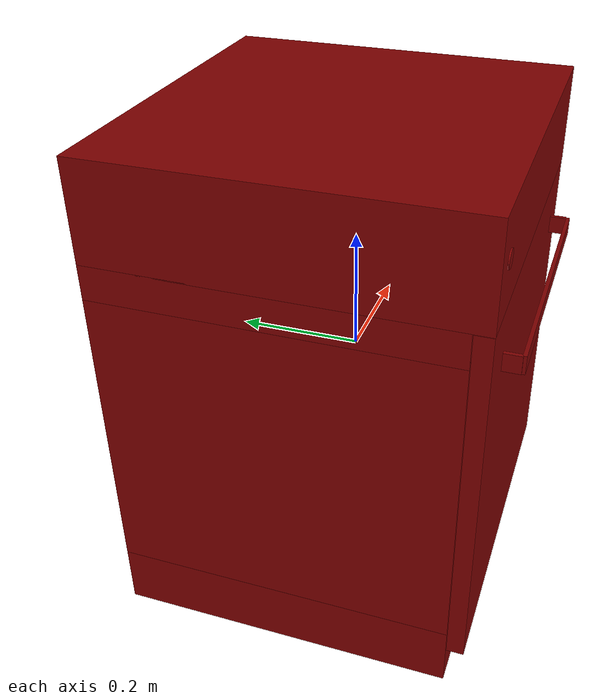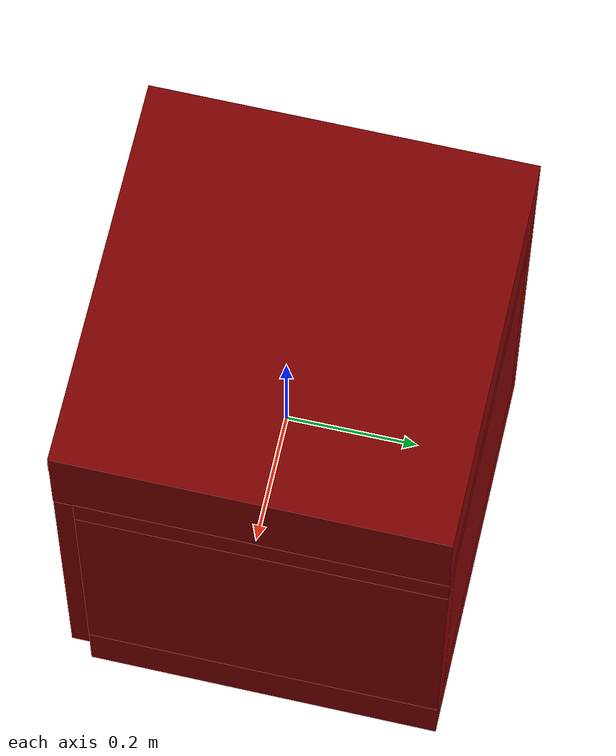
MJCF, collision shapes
<mujoco model="model">
  <compiler angle="radian"/>
  <asset>
    <mesh file="visuals/Body001.obj" name="Body001_vis"/>
    <mesh file="visuals/Button001.obj" name="Button001_vis"/>
    <mesh file="visuals/Container001.obj" name="Container001_vis"/>
    <mesh file="visuals/Container002.obj" name="Container002_vis"/>
    <mesh file="visuals/Door001.obj" name="Door001_vis"/>
    <mesh file="visuals/Handle001.obj" name="Handle001_vis"/>
    <texture file="visuals/T_BC001.png" name="Body001_material" type="2d"/>
    <material name="Body001_material" rgba="1 1 1 1.0" texture="Body001_material" shininess="0.2512328028678894" specular="0.3103448502657381"/>
    <texture file="visuals/T_BC001.png" name="Button001_material" type="2d"/>
    <material name="Button001_material" rgba="1 1 1 1.0" texture="Button001_material" shininess="0.2512328028678894" specular="0.3103448502657381"/>
    <texture file="visuals/T_BC001.png" name="Container001_material" type="2d"/>
    <material name="Container001_material" rgba="1 1 1 1.0" texture="Container001_material" shininess="0.2512328028678894" specular="0.3103448502657381"/>
    <texture file="visuals/T_BC001.png" name="Container002_material" type="2d"/>
    <material name="Container002_material" rgba="1 1 1 1.0" texture="Container002_material" shininess="0.2512328028678894" specular="0.3103448502657381"/>
    <texture file="visuals/T_BC001.png" name="Door001_material" type="2d"/>
    <material name="Door001_material" rgba="1 1 1 1.0" texture="Door001_material" shininess="0.2512328028678894" specular="0.3103448502657381"/>
    <texture file="visuals/T_BC001.png" name="Handle001_material" type="2d"/>
    <material name="Handle001_material" rgba="1 1 1 1.0" texture="Handle001_material" shininess="0.2512328028678894" specular="0.3103448502657381"/>
  </asset>
  <default>
    <default class="visual">
      <geom conaffinity="0" contype="0" group="1" type="mesh"/>
    </default>
    <default class="collision">
      <geom group="0" rgba="0.5 0 0 0.5"/>
    </default>
    <default class="spawn">
      <geom group="0" rgba="1 1 1 0.5" contype="0" conaffinity="0"/>
      <site group="0" rgba="1 1 1 0.5"/>
    </default>
    <default class="region">
      <geom group="1" conaffinity="0" contype="0" rgba="0 1 0 0"/>
    </default>
  </default>
  <worldbody>
    <body>
      <body name="object">
        <geom mesh="Body001_vis" type="mesh" solimp="0.998 0.998 0.001" solref="0.001 1" density="100" friction="0.95 0.3 0.1" class="visual" material="Body001_material"/>
        <geom class="collision" type="box" pos="0.000158 0.016213 0.325383" size="0.29998958110809326 0.2901493310928345 0.0797363743185997" quat="1.0 0.0 0.0 0.0"/>
        <geom class="collision" type="box" pos="0.000158 0.030550 0.219620" size="0.29998958110809326 0.27581214904785156 0.027695506811141968" quat="1.0 0.0 0.0 0.0"/>
        <geom class="collision" type="box" pos="-0.275699 0.030550 -0.058895" size="0.024132370948791504 0.27581214904785156 0.26131245493888855" quat="1.0 0.0 0.0 0.0"/>
        <geom class="collision" type="box" pos="0.275757 0.030550 -0.058895" size="0.024132370948791504 0.27581214904785156 0.26131245493888855" quat="1.0 0.0 0.0 0.0"/>
        <geom class="collision" type="box" pos="0.000158 0.030550 -0.353115" size="0.29998958110809326 0.27581214904785156 0.05177992209792137" quat="1.0 0.0 0.0 0.0"/>
        <geom class="collision" type="box" pos="-0.000892 0.260260 -0.054709" size="0.25167155265808105 0.04610254615545273 0.2503986656665802" quat="1.0 0.0 0.0 0.0"/>
        <body name="Button001">
          <joint axis="0.0 1.0 0.0" pos="-0.263408 -0.276086 0.336072" limited="true" name="Button001_joint" range="0.0 0.002" type="slide" damping="1" frictionloss="1" armature=".01" stiffness="0.05"/>
          <geom mesh="Button001_vis" type="mesh" solimp="0.998 0.998 0.001" solref="0.001 1" density="100" friction="0.95 0.3 0.1" class="visual" material="Button001_material"/>
          <geom class="collision" type="cylinder" pos="-0.263345 -0.276719 0.336104" size="0.013412986882030964 0.001069585676304996" quat="0.7071068286895752 0.7071067690849304 0.0 0.0"/>
        </body>
        <body name="Container001">
          <joint axis="0.0 -1.0 0.0" pos="-0.004659 -0.015957 0.011788" limited="true" name="Container001_joint" range="0.0 0.06" type="slide" damping="1" frictionloss="1" armature=".01" stiffness="0.05"/>
          <geom mesh="Container001_vis" type="mesh" solimp="0.998 0.998 0.001" solref="0.001 1" density="100" friction="0.95 0.3 0.1" class="visual" material="Container001_material"/>
          <geom class="collision" type="box" pos="0.239029 -0.019511 0.047423" size="0.008986547589302063 0.2091057449579239 0.09260738641023636" quat="1.0 0.0 0.0 0.0"/>
          <geom class="collision" type="box" pos="-0.240172 -0.019511 0.047423" size="0.008986547589302063 0.2091057449579239 0.09260738641023636" quat="1.0 0.0 0.0 0.0"/>
          <geom class="collision" type="box" pos="0.000457 -0.220863 0.044384" size="0.23230789601802826 0.005840248893946409 0.08956805616617203" quat="1.0 0.0 0.0 0.0"/>
          <geom class="collision" type="box" pos="0.000457 0.180488 0.044384" size="0.23230789601802826 0.008405267260968685 0.08956805616617203" quat="1.0 0.0 0.0 0.0"/>
          <geom class="collision" type="box" pos="0.000457 -0.015539 -0.041009" size="0.23230789601802826 0.20097476243972778 0.004175184294581413" quat="1.0 0.0 0.0 0.0"/>
        </body>
        <body name="Container002">
          <joint axis="0.0 -1.0 0.0" pos="-0.004658 -0.015957 -0.215422" limited="true" name="Container002_joint" range="0.0 0.06" type="slide" damping="1" frictionloss="1" armature=".01" stiffness="0.05"/>
          <geom mesh="Container002_vis" type="mesh" solimp="0.998 0.998 0.001" solref="0.001 1" density="100" friction="0.95 0.3 0.1" class="visual" material="Container002_material"/>
          <geom class="collision" type="box" pos="0.239029 -0.014132 -0.180182" size="0.008986547589302063 0.20372678339481354 0.09260738641023636" quat="1.0 0.0 0.0 0.0"/>
          <geom class="collision" type="box" pos="-0.240172 -0.017188 -0.180182" size="0.008986547589302063 0.2067825347185135 0.09260738641023636" quat="1.0 0.0 0.0 0.0"/>
          <geom class="collision" type="box" pos="0.000457 -0.220863 -0.183221" size="0.23230789601802826 0.005840248893946409 0.08956805616617203" quat="1.0 0.0 0.0 0.0"/>
          <geom class="collision" type="box" pos="0.000457 0.180488 -0.183221" size="0.23230789601802826 0.008405267260968685 0.08956805616617203" quat="1.0 0.0 0.0 0.0"/>
          <geom class="collision" type="box" pos="0.000457 -0.015539 -0.268614" size="0.23230789601802826 0.20097476243972778 0.004175184294581413" quat="1.0 0.0 0.0 0.0"/>
        </body>
        <body name="Door001">
          <joint axis="1.0 0.0 0.0" pos="-0.000577 -0.245405 -0.335231" limited="true" name="Door001_joint" range="0.0 0.5235987755982988" type="hinge" damping="1" frictionloss="1" armature=".01" stiffness="1" springref="-2"/>
          <geom mesh="Door001_vis" type="mesh" solimp="0.998 0.998 0.001" solref="0.001 1" density="100" friction="0.95 0.3 0.1" class="visual" material="Door001_material"/>
          <geom class="collision" type="box" pos="-0.000258 -0.259950 -0.045216" size="0.2998894453048706 0.01361782941967249 0.2902294099330902" quat="1.0 0.0 0.0 0.0"/>
          <body name="Handle001">
            <geom mesh="Handle001_vis" type="mesh" solimp="0.998 0.998 0.001" solref="0.001 1" density="100" friction="0.95 0.3 0.1" class="visual" material="Handle001_material"/>
            <geom class="collision" type="box" pos="-0.000068 -0.303246 0.160263" size="0.21962477266788483 0.003024103818461299 0.014494284987449646" quat="1.0 0.0 0.0 0.0"/>
            <geom class="collision" type="box" pos="-0.218464 -0.287818 0.160417" size="0.0032157255336642265 0.013620124198496342 0.014182114973664284" quat="1.0 0.0 0.0 0.0"/>
            <geom class="collision" type="box" pos="0.218688 -0.287397 0.160417" size="0.003210511989891529 0.01319980714470148 0.01457595732063055" quat="1.0 0.0 0.0 0.0"/>
          </body>
        </body>
        <geom class="region" name="reg_main" type="box" pos="-9.499999999995623e-06 0.014669500000000002 -0.00011949999999999461" size="0.3000065 0.2908915 0.4049995"/>
        <geom class="region" name="reg_int" type="box" pos="-0.0015725000000000044 -0.0070775000000000005 -0.0598885" size="0.24877950000000001 0.2198405 0.2376255"/>
      </body>
    </body>
  </worldbody>
  <actuator>
    <motor name="Button001_joint_actuator" joint="Button001_joint" gear="0.5"/>
    <motor name="Container001_joint_actuator" joint="Container001_joint" gear="10"/>
    <motor name="Container002_joint_actuator" joint="Container002_joint" gear="10"/>
    <motor name="Door001_joint_actuator" joint="Door001_joint" gear="50"/>
  </actuator>
</mujoco>
